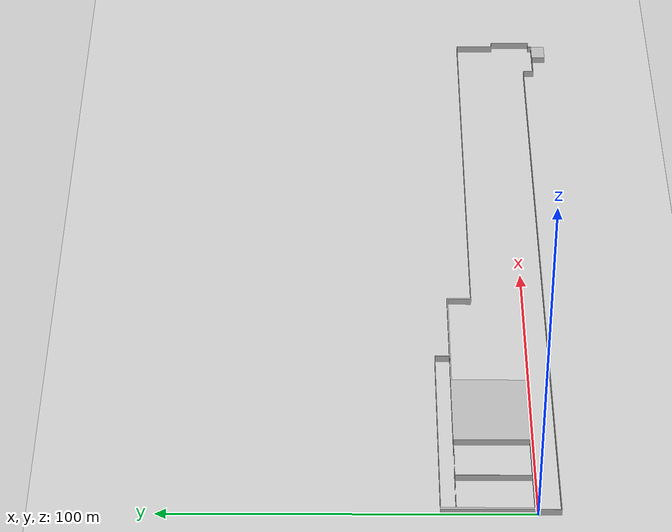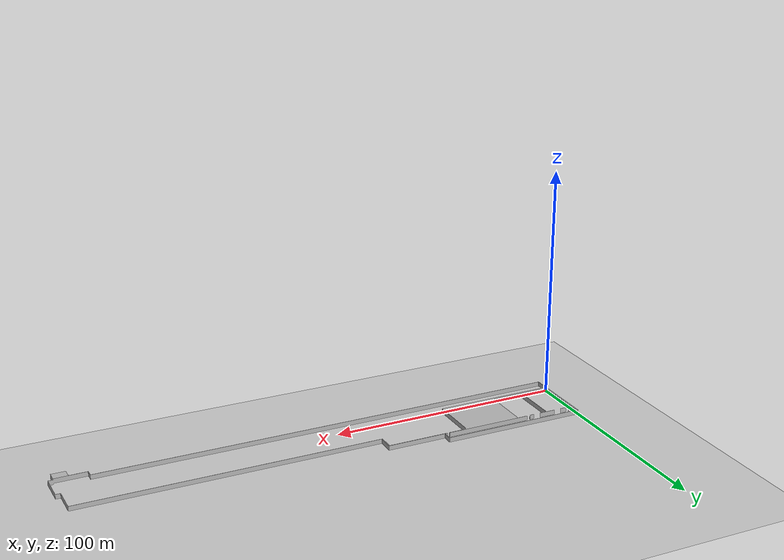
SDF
<?xml version="1.0" ?>
<sdf version="1.6">
  <world name="rubattino_world">
    <light name='sun' type='directional'>
      <cast_shadows>1</cast_shadows>
      <pose>0 0 10 0 -0 0</pose>
      <diffuse>0.8 0.8 0.8 1</diffuse>
      <specular>0.2 0.2 0.2 1</specular>
      <attenuation>
        <range>1000</range>
        <constant>0.9</constant>
        <linear>0.01</linear>
        <quadratic>0.001</quadratic>
      </attenuation>
      <direction>-0.5 0.1 -0.9</direction>
      <spot>
        <inner_angle>0</inner_angle>
        <outer_angle>0</outer_angle>
        <falloff>0</falloff>
      </spot>
    </light>

    <!-- Aggiungo il piano base per fare da pavimento -->
    <include>
      <uri>model://ground_plane</uri>
    </include>

    <gravity>0 0 -9.8</gravity>
    <physics type='ode'>
      <max_step_size>0.001</max_step_size>
      <real_time_factor>1</real_time_factor>
      <real_time_update_rate>1000</real_time_update_rate>
    </physics>
    <scene>
      <ambient>0.45 0.45 0.45 1</ambient>
      <background>0.55 0.55 0.55 1</background>
      <shadows>1</shadows>
    </scene>

    <!-- La mappa 3D convertita dallo step -->
    <include>
      <uri>model://rubattino3d</uri>
      <pose>0 0 0 0 0 0</pose>
    </include>
  </world>
</sdf>

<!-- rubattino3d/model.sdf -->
<sdf version="1.6">
  <model name="rubattino3d">
    <static>true</static>
    <link name="link">
      <pose>0 0 0 1.570796 0 0</pose>
      <collision name="collision">
        <geometry>
          <mesh>
            <uri>model://rubattino3d/meshes/rubattino3d_go1.stl</uri>
            <scale>0.01 0.01 0.01</scale>
          </mesh>
        </geometry>
      </collision>
      <visual name="visual">
        <geometry>
          <mesh>
            <uri>model://rubattino3d/meshes/rubattino3d_go1.stl</uri>
            <scale>0.01 0.01 0.01</scale>
          </mesh>
        </geometry>
      </visual>
    </link>
  </model>
</sdf>
